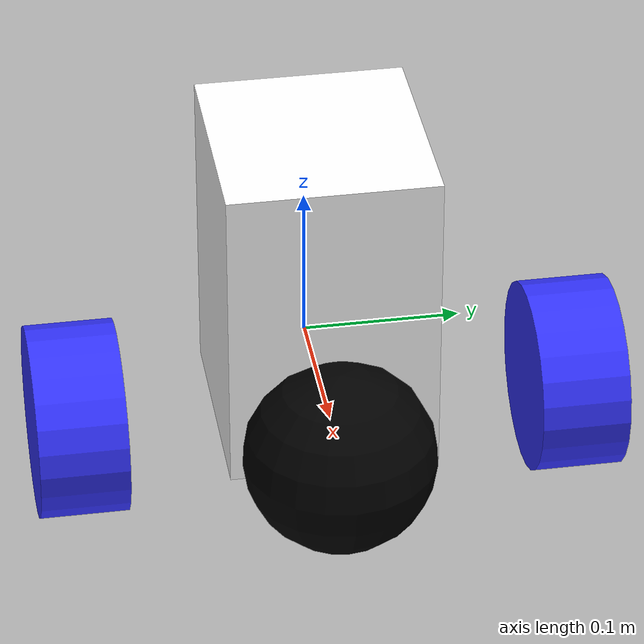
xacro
<?xml version="1.0"?>
<robot xmlns:xacro="http://www.ros.org/wiki/xacro"  >

    <xacro:include filename="inertial_macros.xacro"/>

    <material name="white">
        <color rgba="1 1 1 1" />
    </material>

    <material name="orange">
        <color rgba="1 0.3 0.1 1" />
    </material>

    <material name="blue">
        <color rgba="0.2 0.2 1 1" />
    </material>

    <material name="black">
        <color rgba="0 0 0 1" />
    </material>

    <material name="red">
        <color rgba="1 0 0 1" />
    </material>

     <!-- BASE LINK -->
    <link name="base_link">

    </link>

    <!--BASE FOOT-PRINT -->
    <joint name="base_footprint_joint" type="fixed">
        <parent link="base_link"/>
        <child link="base_footprint"/>
        <origin xyz="0 0 0" rpy="0 0 0"/>
    </joint>

    <link name="base_footprint">
    </link>

     <!-- cHASIIS LINK -->
    <joint name="chassis_joint" type="fixed">
        <parent link="base_link"/>
        <child link="chassis"/>
        <origin xyz="-0.1 0 0"/>

    </joint>

    <link name="chassis">
        <visual>
            <origin xyz="0.15 0 0.075"/>
            <geometry>
                <box size="0.14 0.13 0.2"/>
            </geometry>
            <material name="white"/>
        </visual>

        <collision>
            <origin xyz="0.15 0 0.075"/>
            <geometry>
                <box size="0.14 0.13 0.2"/>
            </geometry>
        </collision>

        <xacro:inertial_box mass="0.5" x="0.14"  y="0.13" z="0.2">
                <origin xyz="0.15 0 0.075" rpy="0 0 0"/>

        </xacro:inertial_box>

    </link>

    <gazebo reference="chassis">
        <material>Gazebo/White</material>
    </gazebo>

    <!-- LEFT WHEEL LINK -->

    <joint name="left_wheel_joint" type="continuous">
        <parent link="base_link"/>
        <child link="left_wheel"/>
        <origin xyz="0.075 0.155 0" rpy="-${pi/2} 0 0"/>
        <axis xyz="0 0 1"/>

    </joint>

    <link name="left_wheel">
        <visual>
            <geometry>
                <cylinder radius="0.06" length=".055"/>
            </geometry>
            <material name="blue"/>
        </visual>

        <collision>
            <geometry>
                <sphere radius="0.06"/>
            </geometry>
        </collision>

        <xacro:inertial_cylinder mass="0.1" length="0.055" radius="0.06">
            <origin xyz="0 0 0" rpy="0 0 0"/>
        </xacro:inertial_cylinder>
    </link>

    <gazebo reference="left_wheel">
        <material>Gazebo/Blue</material>
    </gazebo>

    <!-- RIGHT WHEEL LINK -->

    <joint name="right_wheel_joint" type="continuous">
        <parent link="base_link"/>
        <child link="right_wheel"/>
        <origin xyz="0.075 -0.155 0" rpy="${pi/2} 0 0"/>
        <axis xyz="0 0 -1"/>

    </joint>

    <link name="right_wheel">
        <visual>
            <geometry>
                <cylinder radius="0.06" length=".055"/>
            </geometry>
            <material name="blue"/>
        </visual>

        <collision>
            <geometry>
                <sphere radius="0.06"/>
            </geometry>
        </collision>

        <xacro:inertial_cylinder mass="0.1" length="0.055" radius="0.06">
            <origin xyz="0 0 0" rpy="0 0 0"/>
        </xacro:inertial_cylinder>
    </link>

    <gazebo reference="right_wheel">
        <material>Gazebo/Blue</material>
    </gazebo>

    <!-- FRONT CASTER WHEEL -->
    <joint name="caster_wheel_front_joint" type="fixed">
        <parent link="chassis"/>
        <child link="caster_wheel_front"/>
        <origin xyz="0.24 0 0"/>
    </joint>

    <link name="caster_wheel_front">
        <visual>
            <geometry>
                <sphere radius="0.06"/>
            </geometry>
            <material name="black"/>
        </visual>
        <collision>
            <geometry>
                <sphere radius="0.06"/>
            </geometry>
        </collision>
        <xacro:inertial_sphere mass="0.1" radius="0.06">
            <origin xyz="0 0 0" rpy="0 0 0"/>
        </xacro:inertial_sphere>
    </link>

    <gazebo reference="caster_wheel_front">
        <material>Gazebo/Black</material>
        <mu1 value="0.001"/>
        <mu2 value="0.001"/>
    </gazebo>

    <!-- REAR CASTER WHEEL -->
    <joint name="caster_wheel_rear_joint" type="fixed">
        <parent link="chassis"/>
        <child link="caster_wheel_rear"/>
        <origin xyz="0.06 0 0"/>
    </joint>

    <link name="caster_wheel_rear">
        <visual>
            <geometry>
                <sphere radius="0.06"/>
            </geometry>
            <material name="black"/>
        </visual>
        <collision>
            <geometry>
                <sphere radius="0.06"/>
            </geometry>
        </collision>
        <xacro:inertial_sphere mass="0.1" radius="0.06">
            <origin xyz="0 0 0" rpy="0 0 0"/>
        </xacro:inertial_sphere>
    </link>

    <gazebo reference="caster_wheel_rear">
        <material>Gazebo/Black</material>
        <mu1 value="0.001"/>
        <mu2 value="0.001"/>
    </gazebo>

</robot>
